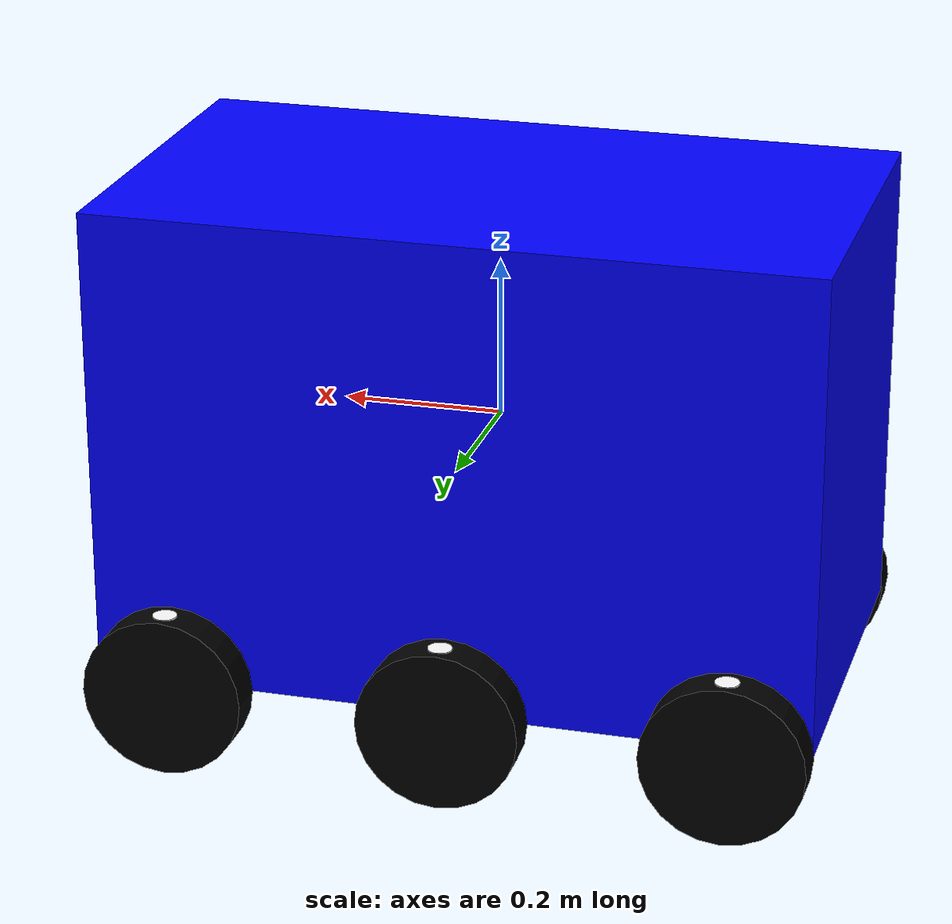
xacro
<?xml version="1.0"?>
<robot name="delivery_robot" xmlns:xacro="http://ros.org/wiki/xacro">

  <!-- Właściwości -->
  <xacro:property name="body_length" value="0.9"/>
  <xacro:property name="body_width" value="0.5"/>
  <xacro:property name="body_height" value="0.6"/>
  <xacro:property name="wheel_radius" value="0.1016"/>
  <xacro:property name="wheel_width" value="0.05"/>
  <xacro:property name="wheel_gap" value="0.35"/>
  <xacro:property name="wheel_y_offset" value="${0.5 * body_width + 0.5 * wheel_width}"/>
  <xacro:property name="wheel_mass" value="3.0"/>
  <xacro:property name="pkg_path" value="$(find boxygo)"/>

  <!-- Materiały -->
  <material name="black"><color rgba="0 0 0 1"/></material>
  <material name="blue"><color rgba="0 0 1 1"/></material>
  <material name="red"><color rgba="1 0 0 1"/></material>
  <material name="white"><color rgba="1 1 1 1"/></material>

  <!-- Korpus -->
  <link name="base_link">
    <visual>
      <geometry>
        <box size="${body_length} ${body_width} ${body_height}"/>
      </geometry>
      <material name="blue"/>
    </visual>
    <collision>
      <geometry>
        <box size="${body_length} ${body_width} ${body_height}"/>
      </geometry>
    </collision>
    <inertial>
      <mass value="20"/>
      <inertia ixx="1" ixy="0" ixz="0" iyy="1" iyz="0" izz="1"/>
    </inertial>
  </link>

  <!-- Makro koła -->
  <xacro:macro name="wheel" params="side index x_offset">
    <xacro:property name="wheel_side_sign" value="${1 if side == 'left' else -1}"/>
    <xacro:property name="ixx" value="${(1.0/12.0) * wheel_mass * (3 * wheel_radius**2 + wheel_width**2)}"/>
    <xacro:property name="izz" value="${0.5 * wheel_mass * wheel_radius**2}"/>

    <link name="${side}_wheel_${index}">
      <visual>
        <geometry>
          <cylinder radius="${wheel_radius}" length="${wheel_width}"/>
        </geometry>
        <origin xyz="0 0 0" rpy="1.5707 0 0"/>
        <material name="black"/>
      </visual>
      <visual name="shaft_visual">
        <geometry>
          <cylinder radius="0.015" length="${wheel_radius * 2}"/>
        </geometry>
        <origin xyz="0 0 0" rpy="0 0 0"/>
        <material name="white"/>
      </visual>
      <collision>
        <geometry>
          <cylinder radius="${wheel_radius}" length="${wheel_width}"/>
        </geometry>
        <origin xyz="0 0 0" rpy="1.5707 0 0"/>
      </collision>
      <inertial>
        <mass value="${wheel_mass}"/>
        <inertia ixx="${ixx}" iyy="${ixx}" izz="${izz}" ixy="0.0" ixz="0.0" iyz="0.0"/>
      </inertial>
    </link>

    <!-- Tarcie dla Gazebo Classic -->
    <gazebo reference="${side}_wheel_${index}">
      <mu1>1.0</mu1>
      <mu2>1.0</mu2>
      <kp>100000.0</kp>
      <kd>10.0</kd>
      <minDepth>0.001</minDepth>
      <maxVel>0.01</maxVel>
    </gazebo>

    <joint name="${side}_wheel_${index}_joint" type="continuous">
      <parent link="base_link"/>
      <child link="${side}_wheel_${index}"/>
      <origin xyz="${x_offset} ${wheel_side_sign * wheel_y_offset} ${-0.5 * body_height}" rpy="0 0 0"/>
      <axis xyz="0 1 0"/>
      <limit effort="10.0" velocity="10.0"/>
      <dynamics damping="0.1" friction="0.1"/>
    </joint>
    <transmission name="${side}_wheel_${index}_trans">
    <type>transmission_interface/SimpleTransmission</type>
    <joint name="${side}_wheel_${index}_joint">
      <hardwareInterface>hardware_interface/VelocityJointInterface</hardwareInterface>
    </joint>
    <actuator name="${side}_wheel_${index}_motor">
      <hardwareInterface>hardware_interface/VelocityJointInterface</hardwareInterface>
      <mechanicalReduction>1</mechanicalReduction>
    </actuator>
  </transmission>
  </xacro:macro>

  <!-- Koła lewe -->
  <xacro:wheel side="left" index="1" x_offset="${-wheel_gap}"/>
  <xacro:wheel side="left" index="2" x_offset="0"/>
  <xacro:wheel side="left" index="3" x_offset="${wheel_gap}"/>
  <!-- Koła prawe -->
  <xacro:wheel side="right" index="1" x_offset="${-wheel_gap}"/>
  <xacro:wheel side="right" index="2" x_offset="0"/>
  <xacro:wheel side="right" index="3" x_offset="${wheel_gap}"/>

  <!-- Gazebo - kolor -->
  <gazebo reference="base_link">
    <material>Gazebo/Blue</material>
  </gazebo>
  <gazebo reference="left_wheel_1">
    <material>Gazebo/Red</material>
  </gazebo>
  <gazebo reference="left_wheel_2">
    <material>Gazebo/Red</material>
  </gazebo>
  <gazebo reference="left_wheel_3">
    <material>Gazebo/Red</material>
  </gazebo>
  <gazebo reference="right_wheel_1">
    <material>Gazebo/Red</material>
  </gazebo>
  <gazebo reference="right_wheel_2">
    <material>Gazebo/Red</material>
  </gazebo>
  <gazebo reference="right_wheel_3">
    <material>Gazebo/Red</material>
  </gazebo>

  <!-- Plugin ros2_control -->
  <gazebo>
    <plugin name="gazebo_ros2_control" filename="libgazebo_ros2_control.so">
      <update_rate>30</update_rate>
      <parameters>${pkg_path}/config/diff_drive_controller_v1.yaml</parameters>
    </plugin>
  </gazebo>

  <!-- ros2_control hardware -->
  <ros2_control name="BoxyGoSystem" type="system">
    <hardware>
      <plugin>gazebo_ros2_control/GazeboSystem</plugin>
    </hardware>
    <joint name="left_wheel_1_joint">
      <command_interface name="velocity"/>
      <state_interface name="position"/>
      <state_interface name="velocity"/>
    </joint>
    <joint name="left_wheel_2_joint">
      <command_interface name="velocity"/>
      <state_interface name="position"/>
      <state_interface name="velocity"/>
    </joint>
    <joint name="left_wheel_3_joint">
      <command_interface name="velocity"/>
      <state_interface name="position"/>
      <state_interface name="velocity"/>
    </joint>
    <joint name="right_wheel_1_joint">
      <command_interface name="velocity"/>
      <state_interface name="position"/>
      <state_interface name="velocity"/>
    </joint>
    <joint name="right_wheel_2_joint">
      <command_interface name="velocity"/>
      <state_interface name="position"/>
      <state_interface name="velocity"/>
    </joint>
    <joint name="right_wheel_3_joint">
      <command_interface name="velocity"/>
      <state_interface name="position"/>
      <state_interface name="velocity"/>
    </joint>
  </ros2_control>

</robot>
